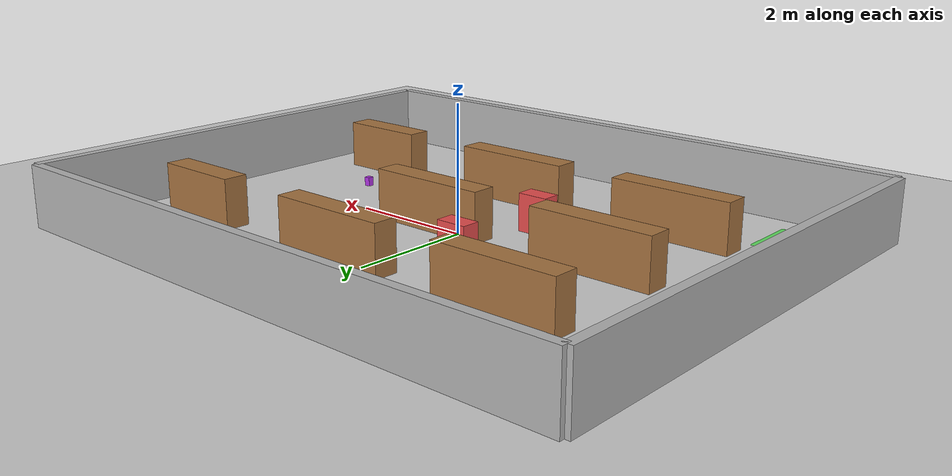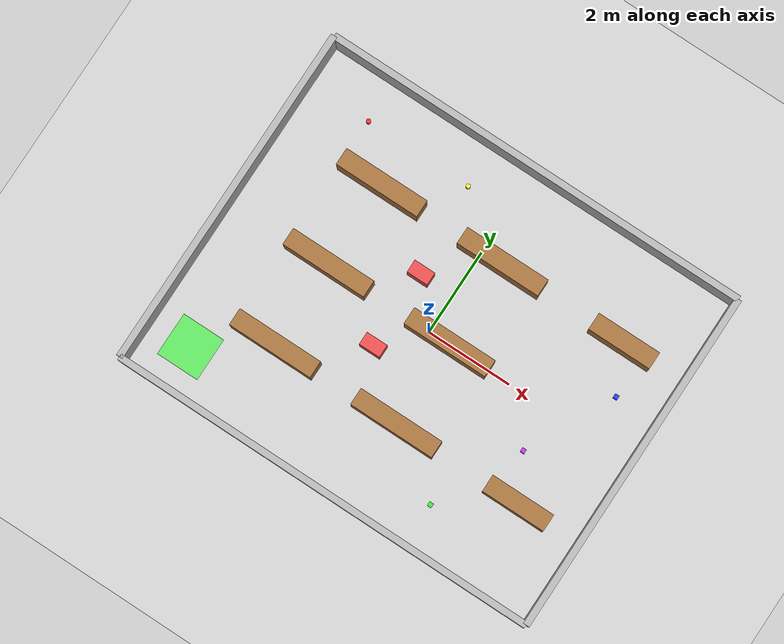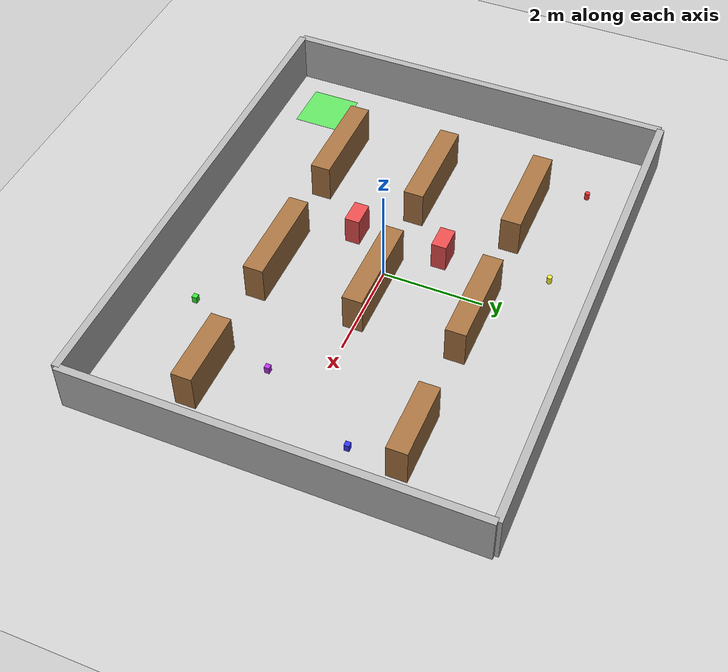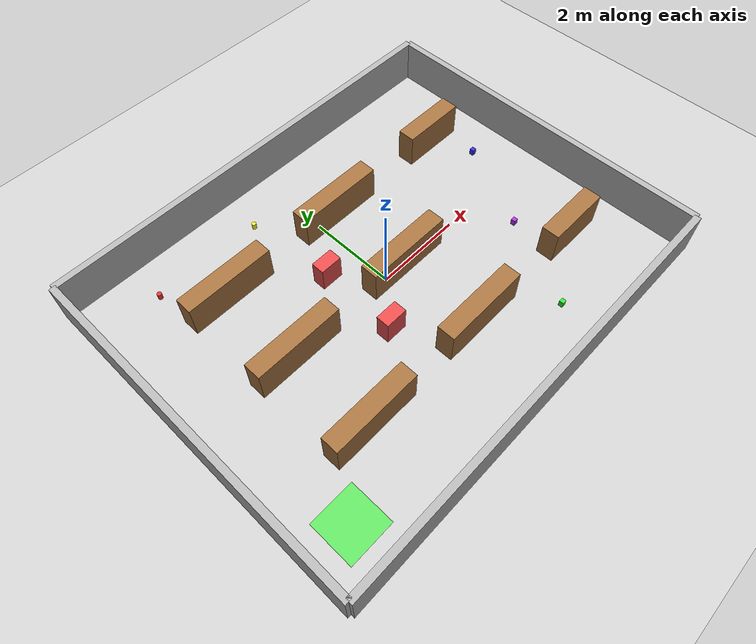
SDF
<?xml version="1.0" ?>
<sdf version="1.6">
  <world name="warehouse_world">

    <!-- Physics -->
    <physics type="ode">
      <max_step_size>0.003</max_step_size>
      <real_time_factor>1.0</real_time_factor>
      <real_time_update_rate>333</real_time_update_rate>
    </physics>

    <!-- Sun -->
    <include>
      <uri>model://sun</uri>
    </include>

    <!-- Ground plane -->
    <include>
      <uri>model://ground_plane</uri>
    </include>

    <!-- ======================== WAREHOUSE WALLS ======================== -->
    <!-- Outer walls (10m x 8m warehouse) -->

    <!-- North wall -->
    <model name="wall_north">
      <static>true</static>
      <pose>0 4 0.5 0 0 0</pose>
      <link name="link">
        <collision name="collision">
          <geometry><box><size>10 0.15 1.0</size></box></geometry>
        </collision>
        <visual name="visual">
          <geometry><box><size>10 0.15 1.0</size></box></geometry>
          <material>
            <ambient>0.6 0.6 0.6 1</ambient>
            <diffuse>0.7 0.7 0.7 1</diffuse>
          </material>
        </visual>
      </link>
    </model>

    <!-- South wall -->
    <model name="wall_south">
      <static>true</static>
      <pose>0 -4 0.5 0 0 0</pose>
      <link name="link">
        <collision name="collision">
          <geometry><box><size>10 0.15 1.0</size></box></geometry>
        </collision>
        <visual name="visual">
          <geometry><box><size>10 0.15 1.0</size></box></geometry>
          <material>
            <ambient>0.6 0.6 0.6 1</ambient>
            <diffuse>0.7 0.7 0.7 1</diffuse>
          </material>
        </visual>
      </link>
    </model>

    <!-- East wall -->
    <model name="wall_east">
      <static>true</static>
      <pose>5 0 0.5 0 0 0</pose>
      <link name="link">
        <collision name="collision">
          <geometry><box><size>0.15 8 1.0</size></box></geometry>
        </collision>
        <visual name="visual">
          <geometry><box><size>0.15 8 1.0</size></box></geometry>
          <material>
            <ambient>0.6 0.6 0.6 1</ambient>
            <diffuse>0.7 0.7 0.7 1</diffuse>
          </material>
        </visual>
      </link>
    </model>

    <!-- West wall -->
    <model name="wall_west">
      <static>true</static>
      <pose>-5 0 0.5 0 0 0</pose>
      <link name="link">
        <collision name="collision">
          <geometry><box><size>0.15 8 1.0</size></box></geometry>
        </collision>
        <visual name="visual">
          <geometry><box><size>0.15 8 1.0</size></box></geometry>
          <material>
            <ambient>0.6 0.6 0.6 1</ambient>
            <diffuse>0.7 0.7 0.7 1</diffuse>
          </material>
        </visual>
      </link>
    </model>

    <!-- ======================== SHELF ROWS (AISLES) ======================== -->
    <!-- Row 1: left side shelves -->
    <model name="shelf_1a">
      <static>true</static>
      <pose>-2.5 2.0 0.4 0 0 0</pose>
      <link name="link">
        <collision name="collision">
          <geometry><box><size>2.0 0.4 0.8</size></box></geometry>
        </collision>
        <visual name="visual">
          <geometry><box><size>2.0 0.4 0.8</size></box></geometry>
          <material>
            <ambient>0.55 0.35 0.15 1</ambient>
            <diffuse>0.65 0.45 0.25 1</diffuse>
          </material>
        </visual>
      </link>
    </model>

    <model name="shelf_1b">
      <static>true</static>
      <pose>-2.5 0.0 0.4 0 0 0</pose>
      <link name="link">
        <collision name="collision">
          <geometry><box><size>2.0 0.4 0.8</size></box></geometry>
        </collision>
        <visual name="visual">
          <geometry><box><size>2.0 0.4 0.8</size></box></geometry>
          <material>
            <ambient>0.55 0.35 0.15 1</ambient>
            <diffuse>0.65 0.45 0.25 1</diffuse>
          </material>
        </visual>
      </link>
    </model>

    <model name="shelf_1c">
      <static>true</static>
      <pose>-2.5 -2.0 0.4 0 0 0</pose>
      <link name="link">
        <collision name="collision">
          <geometry><box><size>2.0 0.4 0.8</size></box></geometry>
        </collision>
        <visual name="visual">
          <geometry><box><size>2.0 0.4 0.8</size></box></geometry>
          <material>
            <ambient>0.55 0.35 0.15 1</ambient>
            <diffuse>0.65 0.45 0.25 1</diffuse>
          </material>
        </visual>
      </link>
    </model>

    <!-- Row 2: center shelves -->
    <model name="shelf_2a">
      <static>true</static>
      <pose>0.5 2.0 0.4 0 0 0</pose>
      <link name="link">
        <collision name="collision">
          <geometry><box><size>2.0 0.4 0.8</size></box></geometry>
        </collision>
        <visual name="visual">
          <geometry><box><size>2.0 0.4 0.8</size></box></geometry>
          <material>
            <ambient>0.55 0.35 0.15 1</ambient>
            <diffuse>0.65 0.45 0.25 1</diffuse>
          </material>
        </visual>
      </link>
    </model>

    <model name="shelf_2b">
      <static>true</static>
      <pose>0.5 0.0 0.4 0 0 0</pose>
      <link name="link">
        <collision name="collision">
          <geometry><box><size>2.0 0.4 0.8</size></box></geometry>
        </collision>
        <visual name="visual">
          <geometry><box><size>2.0 0.4 0.8</size></box></geometry>
          <material>
            <ambient>0.55 0.35 0.15 1</ambient>
            <diffuse>0.65 0.45 0.25 1</diffuse>
          </material>
        </visual>
      </link>
    </model>

    <model name="shelf_2c">
      <static>true</static>
      <pose>0.5 -2.0 0.4 0 0 0</pose>
      <link name="link">
        <collision name="collision">
          <geometry><box><size>2.0 0.4 0.8</size></box></geometry>
        </collision>
        <visual name="visual">
          <geometry><box><size>2.0 0.4 0.8</size></box></geometry>
          <material>
            <ambient>0.55 0.35 0.15 1</ambient>
            <diffuse>0.65 0.45 0.25 1</diffuse>
          </material>
        </visual>
      </link>
    </model>

    <!-- Row 3: right side shelves -->
    <model name="shelf_3a">
      <static>true</static>
      <pose>3.5 2.0 0.4 0 0 0</pose>
      <link name="link">
        <collision name="collision">
          <geometry><box><size>1.5 0.4 0.8</size></box></geometry>
        </collision>
        <visual name="visual">
          <geometry><box><size>1.5 0.4 0.8</size></box></geometry>
          <material>
            <ambient>0.55 0.35 0.15 1</ambient>
            <diffuse>0.65 0.45 0.25 1</diffuse>
          </material>
        </visual>
      </link>
    </model>

    <model name="shelf_3b">
      <static>true</static>
      <pose>3.5 -2.0 0.4 0 0 0</pose>
      <link name="link">
        <collision name="collision">
          <geometry><box><size>1.5 0.4 0.8</size></box></geometry>
        </collision>
        <visual name="visual">
          <geometry><box><size>1.5 0.4 0.8</size></box></geometry>
          <material>
            <ambient>0.55 0.35 0.15 1</ambient>
            <diffuse>0.65 0.45 0.25 1</diffuse>
          </material>
        </visual>
      </link>
    </model>

    <!-- ======================== NARROW CORRIDOR OBSTACLE ======================== -->
    <!-- Creates a narrow passage to test congestion -->
    <model name="corridor_block_left">
      <static>true</static>
      <pose>-0.8 -0.9 0.3 0 0 0</pose>
      <link name="link">
        <collision name="collision">
          <geometry><box><size>0.5 0.3 0.6</size></box></geometry>
        </collision>
        <visual name="visual">
          <geometry><box><size>0.5 0.3 0.6</size></box></geometry>
          <material>
            <ambient>0.8 0.2 0.2 1</ambient>
            <diffuse>0.9 0.3 0.3 1</diffuse>
          </material>
        </visual>
      </link>
    </model>

    <model name="corridor_block_right">
      <static>true</static>
      <pose>-0.8 0.9 0.3 0 0 0</pose>
      <link name="link">
        <collision name="collision">
          <geometry><box><size>0.5 0.3 0.6</size></box></geometry>
        </collision>
        <visual name="visual">
          <geometry><box><size>0.5 0.3 0.6</size></box></geometry>
          <material>
            <ambient>0.8 0.2 0.2 1</ambient>
            <diffuse>0.9 0.3 0.3 1</diffuse>
          </material>
        </visual>
      </link>
    </model>

    <!-- ======================== COLLECTIBLE OBJECTS ======================== -->
    <!-- These are the objects robots need to detect with YOLO and collect -->

    <!-- Object 1: Red cylinder (like a can) -->
    <model name="collect_obj_1">
      <static>true</static>
      <pose>-3.5 3.0 0.1 0 0 0</pose>
      <link name="link">
        <collision name="collision">
          <geometry><cylinder><radius>0.05</radius><length>0.15</length></cylinder></geometry>
        </collision>
        <visual name="visual">
          <geometry><cylinder><radius>0.05</radius><length>0.15</length></cylinder></geometry>
          <material>
            <ambient>0.9 0.1 0.1 1</ambient>
            <diffuse>1.0 0.2 0.2 1</diffuse>
          </material>
        </visual>
      </link>
    </model>

    <!-- Object 2: Green box -->
    <model name="collect_obj_2">
      <static>true</static>
      <pose>2.0 -3.0 0.075 0 0 0</pose>
      <link name="link">
        <collision name="collision">
          <geometry><box><size>0.1 0.1 0.15</size></box></geometry>
        </collision>
        <visual name="visual">
          <geometry><box><size>0.1 0.1 0.15</size></box></geometry>
          <material>
            <ambient>0.1 0.8 0.1 1</ambient>
            <diffuse>0.2 0.9 0.2 1</diffuse>
          </material>
        </visual>
      </link>
    </model>

    <!-- Object 3: Blue box -->
    <model name="collect_obj_3">
      <static>true</static>
      <pose>4.0 1.0 0.075 0 0 0</pose>
      <link name="link">
        <collision name="collision">
          <geometry><box><size>0.1 0.1 0.15</size></box></geometry>
        </collision>
        <visual name="visual">
          <geometry><box><size>0.1 0.1 0.15</size></box></geometry>
          <material>
            <ambient>0.1 0.1 0.9 1</ambient>
            <diffuse>0.2 0.2 1.0 1</diffuse>
          </material>
        </visual>
      </link>
    </model>

    <!-- Object 4: Yellow cylinder -->
    <model name="collect_obj_4">
      <static>true</static>
      <pose>-1.0 3.0 0.1 0 0 0</pose>
      <link name="link">
        <collision name="collision">
          <geometry><cylinder><radius>0.05</radius><length>0.15</length></cylinder></geometry>
        </collision>
        <visual name="visual">
          <geometry><cylinder><radius>0.05</radius><length>0.15</length></cylinder></geometry>
          <material>
            <ambient>0.9 0.9 0.1 1</ambient>
            <diffuse>1.0 1.0 0.2 1</diffuse>
          </material>
        </visual>
      </link>
    </model>

    <!-- Object 5: Purple box -->
    <model name="collect_obj_5">
      <static>true</static>
      <pose>3.0 -1.0 0.075 0 0 0</pose>
      <link name="link">
        <collision name="collision">
          <geometry><box><size>0.1 0.1 0.15</size></box></geometry>
        </collision>
        <visual name="visual">
          <geometry><box><size>0.1 0.1 0.15</size></box></geometry>
          <material>
            <ambient>0.6 0.1 0.8 1</ambient>
            <diffuse>0.7 0.2 0.9 1</diffuse>
          </material>
        </visual>
      </link>
    </model>

    <!-- ======================== DROP ZONE MARKER ======================== -->
    <!-- Visual marker for where collected items should be delivered -->
    <model name="drop_zone">
      <static>true</static>
      <pose>-4.0 -3.0 0.005 0 0 0</pose>
      <link name="link">
        <visual name="visual">
          <geometry><box><size>1.0 1.0 0.01</size></box></geometry>
          <material>
            <ambient>0.0 1.0 0.0 0.5</ambient>
            <diffuse>0.0 1.0 0.0 0.5</diffuse>
          </material>
        </visual>
      </link>
    </model>

  </world>
</sdf>
